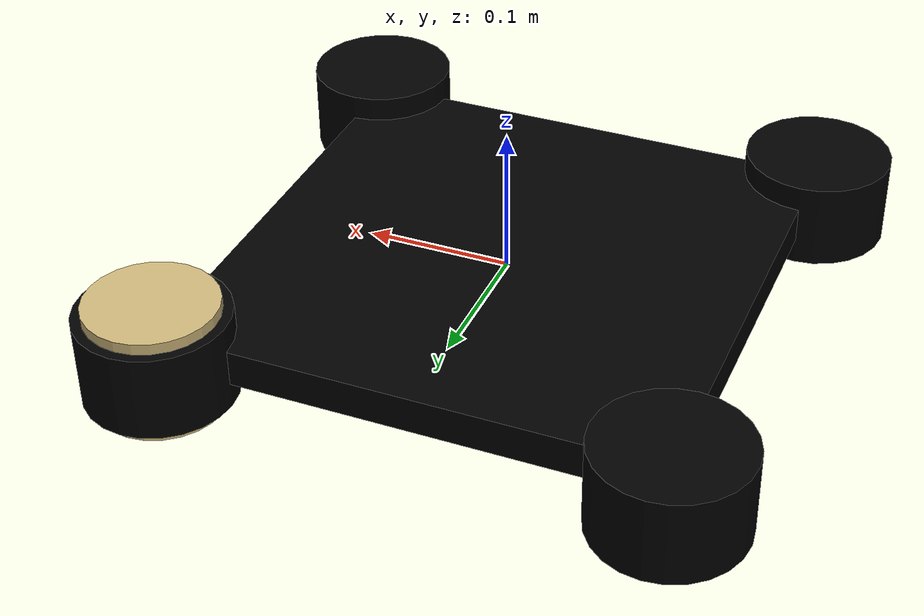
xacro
<?xml version="1.0"?>
<robot xmlns:xacro="http://www.ros.org/wiki/xacro" name="buffbot">
  <material name="black">
    <color rgba="0 0 0 1"/>
  </material>

  <material name="white">
    <color rgba="1 1 1 1"/>
  </material>

  <material name="dark-gray">
    <color rgba="0.33 0.35 0.36 1"/>
  </material>

  <material name="light-gray">
    <color rgba="0.63 0.64 0.63 1"/>
  </material>

  <material name="gold">
    <color rgba="0.81 0.72 0.48 1"/>
  </material>

  <xacro:macro name="default_cylinder_link" params="link_name radius length color mass">
    <link name="${link_name}">
        <visual>
         <origin xyz="0 0 0" rpy="0 0 0" />
         <geometry>
           <cylinder radius="${radius}" length="${length}"/>
         </geometry>
         <material name="${color}"/>
       </visual>

       <collision>
         <origin xyz="0 0 0" rpy="0 0 0" />
         <geometry>
           <cylinder radius="${radius}" length="${length}"/>
         </geometry>
       </collision>

       <inertial>
         <origin xyz="0 0 0" rpy="0 0 0"/>
         <mass value="${mass}"/>
         <inertia ixx="${(1/12) * ((length * length) + (3 * (radius * radius))) * mass}"  ixy="0"  ixz="0"
          iyy="${(1/12) * ((length * length) + (3 * (radius * radius))) * mass}" iyz="0" izz="${(1/2) * mass * radius * radius}" />
       </inertial>
      </link>
  </xacro:macro>

  <xacro:macro name="no_collision_cylinder_link" params="link_name radius length color mass">
    <link name="${link_name}">
        <visual>
         <origin xyz="0 0 0" rpy="0 0 0" />
         <geometry>
           <cylinder radius="${radius}" length="${length}"/>
         </geometry>
         <material name="${color}"/>
       </visual>

       <inertial>
         <origin xyz="0 0 0" rpy="0 0 0"/>
         <mass value="${mass}"/>
         <inertia ixx="${(1/12) * ((length * length) + (3 * (radius * radius))) * mass}"  ixy="0"  ixz="0"
          iyy="${(1/12) * ((length * length) + (3 * (radius * radius))) * mass}" iyz="0" izz="${(1/2) * mass * radius * radius}" />
       </inertial>
      </link>
  </xacro:macro>

  <xacro:macro name="default_box_link" params="link_name x y z color mass">
    <link name="${link_name}">
      <visual>
        <origin xyz="0 0 0" rpy="0 0 0" />
        <geometry>
          <box size="${x} ${y} ${z}"/>
        </geometry>
       <material name="${color}"/>
      </visual>

      <collision>
        <origin xyz="0 0 0" rpy="0 0 0" />
        <geometry>
          <box size="${x} ${y} ${z}"/>
        </geometry>
      </collision>

      <inertial>
        <origin xyz="0 0 0" rpy="0 0 0"/>
        <mass value="${mass}"/>
        <inertia ixx="${(1/12) * ((z * z) + (y * y)) * mass}"  ixy="0"  ixz="0"
          iyy="${(1/12) * ((x * x) + (z * z)) * mass}" iyz="0" izz="${(1/12) * ((x * x) + (y * y)) * mass}" />
      </inertial>
    </link>
  </xacro:macro>

  <xacro:macro name="swerve_hub" params="id l w x y a">
    <xacro:default_cylinder_link link_name="${id}_swerve" radius="${w*0.3}" length="0.06" color="black" mass="5"/>
    <gazebo reference="${id}_swerve">
      <material>Gazebo/Black</material>
      <selfCollide>true</selfCollide>
      <static>false</static>
    </gazebo>

    <joint name="${id}_steer" type="continuous">
      <parent link="base_link"/>
      <child link="${id}_swerve"/>
      <origin xyz="${x * l} ${y * w} 0" rpy="0 0 ${a}"/>
      <axis xyz="0 0 1"/>
    </joint>

    <transmission name="trans_${id}">
      <type>transmission_interface/SimpleTransmission</type>
      <joint name="${id}_steer">
        <hardwareInterface>hardware_interface/EffortJointInterface</hardwareInterface>
      </joint>
      <actuator name="${id}_steer_motor">
        <hardwareInterface>hardware_interface/EffortJointInterface</hardwareInterface>
        <mechanicalReduction>1</mechanicalReduction>
      </actuator>
    </transmission>
  </xacro:macro>

  <xacro:macro name="swerve_indicator" params="l w x y">
    <xacro:no_collision_cylinder_link link_name="swerve_ind" radius="${w*0.26}" length="0.075" color="gold" mass="0"/>
    <gazebo reference="swerve_ind">
      <material>Gazebo/Gold</material>
      <selfCollide>true</selfCollide>
      <static>false</static>
    </gazebo>
    <joint name="swerve_xy" type="fixed">
      <parent link="base_link"/>
      <child link="swerve_ind"/>
      <origin xyz="${x * l} ${y * w} 0"/>
      <axis xyz="0 0 1"/>
    </joint>
  </xacro:macro>

  <xacro:macro name="swerve_wheel" params="id l w x y">
    <xacro:default_cylinder_link link_name="${id}_wheel" radius="${w*0.15}" length="0.025" color="light-gray" mass="5"/>

    <gazebo reference="${id}_wheel">
      <material>Gazebo/White</material>
      <selfCollide>true</selfCollide>
      <static>false</static>
      <kp>1000000.0</kp>
      <kd>100.0</kd>
      <mu1>1.0</mu1>
      <mu2>1.0</mu2>
    </gazebo>

    <joint name="${id}_drive" type="continuous">
      <parent link="${id}_swerve"/>
      <child link="${id}_wheel"/>
      <origin xyz="0 0 ${w*-0.16}" rpy="1.57 0 0"/>
      <axis xyz="0 0 1"/>
    </joint>

    <transmission name="trand_${id}">
      <type>transmission_interface/SimpleTransmission</type>
      <joint name="${id}_drive">
        <hardwareInterface>hardware_interface/EffortJointInterface</hardwareInterface>
      </joint>
      <actuator name="${id}_drive_motor">
        <hardwareInterface>hardware_interface/EffortJointInterface</hardwareInterface>
        <mechanicalReduction>1</mechanicalReduction>
      </actuator>
    </transmission>
  </xacro:macro>

  <xacro:macro name="swerve" params="id l w x y a">
    <xacro:swerve_hub id="${id}" l="${l}" w="${w}" x="${x}" y="${y}" a="${a}"/>
    <xacro:swerve_wheel id="${id}" l="${l}" w="${w}" x="${x}" y="${y}"/>

  </xacro:macro>

  <xacro:macro name="swerve_chassis" params="w l g">
    <xacro:default_box_link link_name="base_link" x="${l * 2}" y="${w * 2}" z="${0.025}" color="black" mass="10"/>
    <gazebo reference="base_link">
      <material>Gazebo/Black</material>
      <selfCollide>true</selfCollide>
      <static>false</static>
      <mu1>0.5</mu1>
      <mu2>0.5</mu2>
    </gazebo>

    <xacro:swerve id="fl" l="${l}" w="${w}" x="1" y="1" a="${3.1415926535 / 4}"/>
    <xacro:swerve id="fr" l="${l}" w="${w}" x="1" y="-1" a="${-3.1415926535 / 4}"/>
    <xacro:swerve id="rr" l="${l}" w="${w}" x="-1" y="-1" a="${-3.1415926535 / 4 * 3}"/>
    <xacro:swerve id="rl" l="${l}" w="${w}" x="-1" y="1" a="${3.1415926535 / 4 * 3}"/>

    <xacro:swerve_indicator l="${l}" w="${w}" x="1" y="1"/>

  </xacro:macro>

  <xacro:swerve_chassis w="0.17" l="0.17" g="0.1"/>
  <gazebo>
    <plugin name="gazebo_ros_control" filename="libgazebo_ros_control.so">
      <robotNamespace>/buffbot</robotNamespace>
    </plugin>
  </gazebo>
</robot>
